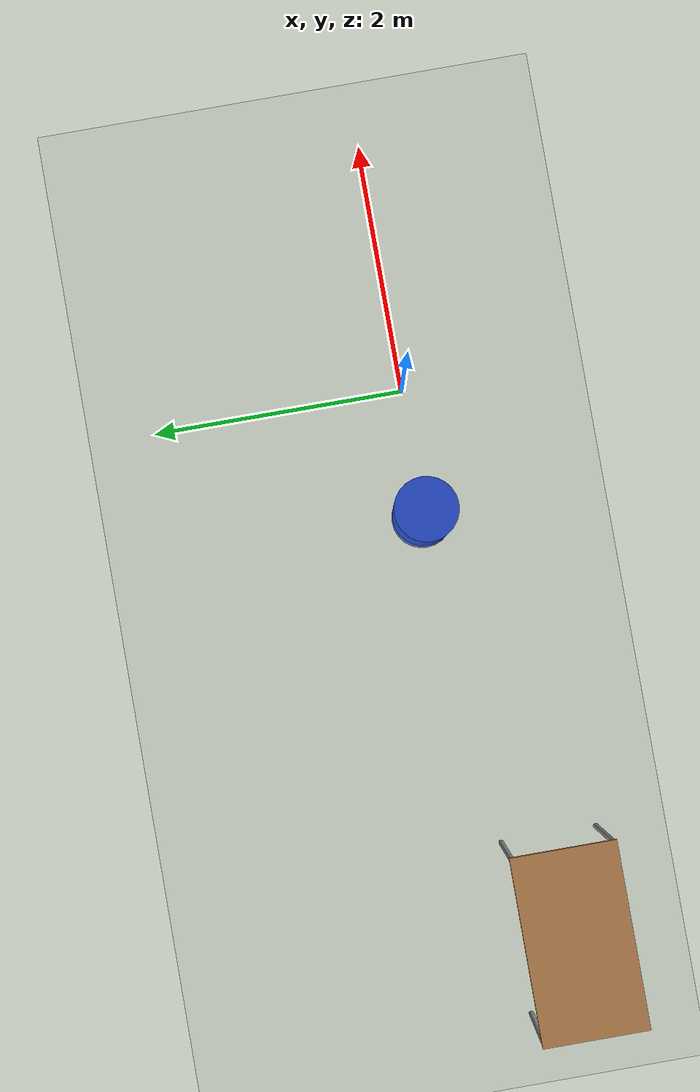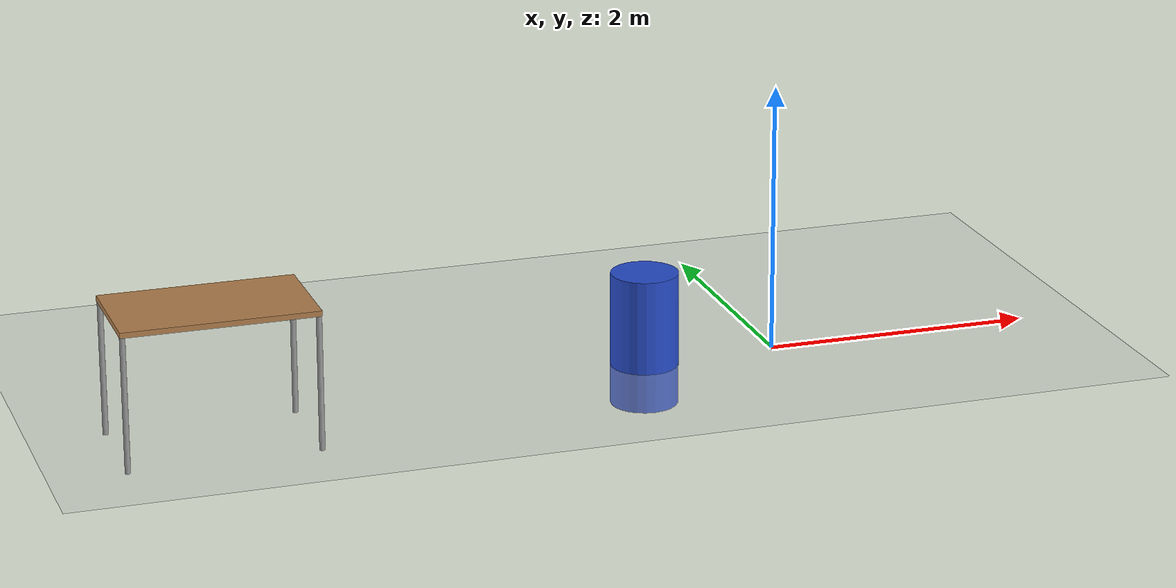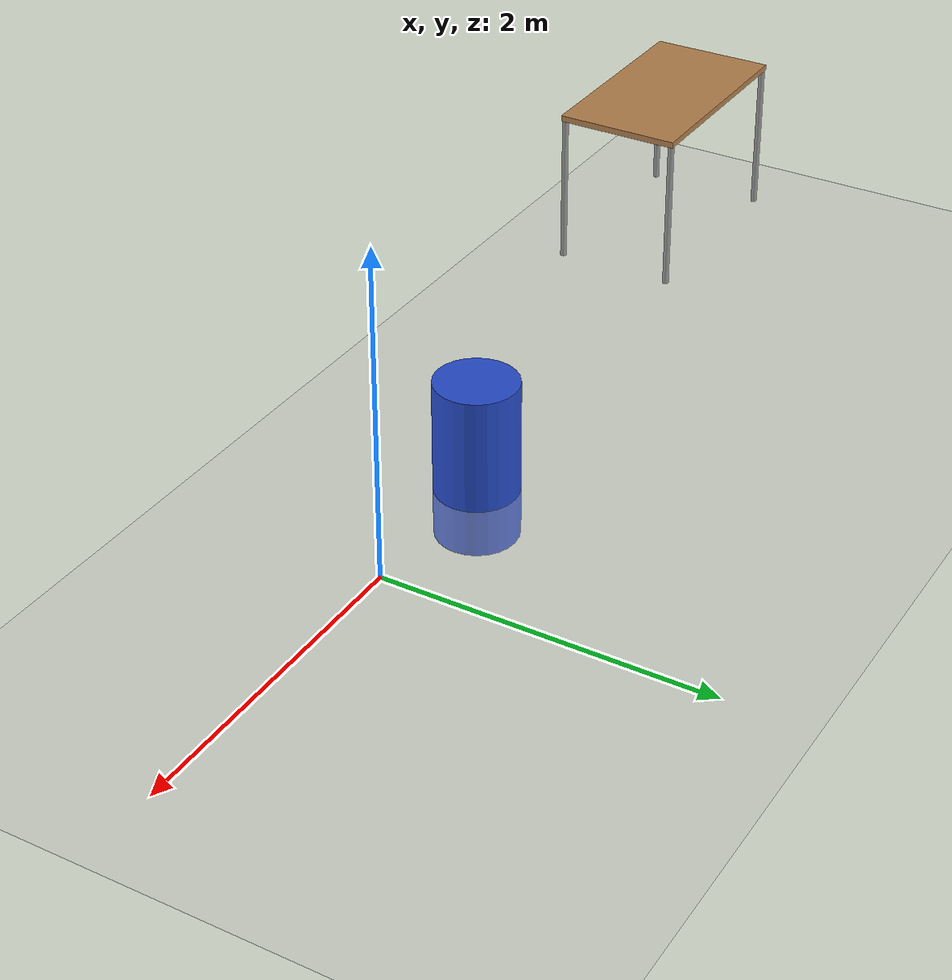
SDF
<sdf version="1.6">
 <world name="default">
  <model name="dynamic_obstacle_path_2">
   <pose>-1 0 0.2 0 0 0</pose>
   <link name="link">
    <inertial>
     <mass>70.0</mass>
     <inertia><ixx>8.4</ixx><ixy>0</ixy><ixz>0</ixz><iyy>8.4</iyy><iyz>0</iyz><izz>1.75</izz></inertia>
    </inertial>
    <collision name="collision">
     <geometry><cylinder><radius>0.25</radius><length>1.0</length></cylinder></geometry>
    </collision>
    <visual name="visual">
     <geometry><cylinder><radius>0.25</radius><length>1.0</length></cylinder></geometry>
     <material>
      <script><uri>file://media/materials/scripts/gazebo.material</uri><name>Gazebo/Blue</name></script>
     </material>
    </visual>
    <kinematic>1</kinematic>
    <gravity>0</gravity>
   </link>
   <plugin name="obstacle_path_2" filename="/home/he/quad/navigation/DRL-robot-navigation/catkin_ws/src/multi_robot_scenario/plugins/libobstaclePathPlugin.so">
    <velocity>0.5</velocity>
    <orientation>true</orientation>
    <angular_velocity>0.2</angular_velocity>
    <loop>true</loop>
    <path>
     <waypoint>-1 0 0.2</waypoint>
     <waypoint>-2 -0.5 0.2</waypoint>
     <waypoint>-1.5 -1 0.2</waypoint>
     <waypoint>0 -2 0.2</waypoint>
     <waypoint>1 -2 0.2</waypoint>
     <waypoint>2 -1 0.2</waypoint>
     <waypoint>1 -1 0.2</waypoint>
     <waypoint>-1 0 0.2</waypoint>
    </path>
   </plugin>
   <static>0</static>
  </model>
  <model name="ground_plane">
   <static>1</static>
   <link name="link">
    <collision name="collision">
     <geometry><plane><normal>0 0 1</normal><size>100 100</size></plane></geometry>
     <surface><friction><ode><mu>100</mu><mu2>50</mu2></ode></friction></surface>
    </collision>
    <visual name="visual">
     <cast_shadows>0</cast_shadows>
     <geometry><plane><normal>0 0 1</normal><size>100 100</size></plane></geometry>
     <material>
      <script><uri>file://media/materials/scripts/gazebo.material</uri><name>Gazebo/Grey</name></script>
     </material>
    </visual>
   </link>
  </model>
  <model name="table">
   <static>0</static>
   <link name="link">
    <collision name="surface">
     <pose>0 0 1 0 -0 0</pose>
     <geometry><box><size>1.5 0.8 0.03</size></box></geometry>
     <surface><friction><ode><mu>0.6</mu><mu2>0.6</mu2></ode></friction></surface>
    </collision>
    <visual name="visual1">
     <pose>0 0 1 0 -0 0</pose>
     <geometry><box><size>1.4 0.8 0.04</size></box></geometry>
     <material>
      <script><uri>file://media/materials/scripts/gazebo.material</uri><name>Gazebo/Wood</name></script>
     </material>
    </visual>
    <collision name="front_left_leg">
     <pose>0.68 0.38 0.5 0 -0 0</pose>
     <geometry><cylinder><radius>0.02</radius><length>1</length></cylinder></geometry>
    </collision>
    <visual name="front_left_leg">
     <pose>0.68 0.38 0.5 0 -0 0</pose>
     <geometry><cylinder><radius>0.02</radius><length>1</length></cylinder></geometry>
     <material>
      <script><uri>file://media/materials/scripts/gazebo.material</uri><name>Gazebo/Grey</name></script>
     </material>
    </visual>
    <collision name="front_right_leg">
     <pose>0.68 -0.38 0.5 0 -0 0</pose>
     <geometry><cylinder><radius>0.02</radius><length>1</length></cylinder></geometry>
    </collision>
    <visual name="front_right_leg">
     <pose>0.68 -0.38 0.5 0 -0 0</pose>
     <geometry><cylinder><radius>0.02</radius><length>1</length></cylinder></geometry>
     <material>
      <script><uri>file://media/materials/scripts/gazebo.material</uri><name>Gazebo/Grey</name></script>
     </material>
    </visual>
    <collision name="back_right_leg">
     <pose>-0.68 -0.38 0.5 0 -0 0</pose>
     <geometry><cylinder><radius>0.02</radius><length>1</length></cylinder></geometry>
    </collision>
    <visual name="back_right_leg">
     <pose>-0.68 -0.38 0.5 0 -0 0</pose>
     <geometry><cylinder><radius>0.02</radius><length>1</length></cylinder></geometry>
     <material>
      <script><uri>file://media/materials/scripts/gazebo.material</uri><name>Gazebo/Grey</name></script>
     </material>
    </visual>
    <collision name="back_left_leg">
     <pose>-0.68 0.38 0.5 0 -0 0</pose>
     <geometry><cylinder><radius>0.02</radius><length>1</length></cylinder></geometry>
    </collision>
    <visual name="back_left_leg">
     <pose>-0.68 0.38 0.5 0 -0 0</pose>
     <geometry><cylinder><radius>0.02</radius><length>1</length></cylinder></geometry>
     <material>
      <script><uri>file://media/materials/scripts/gazebo.material</uri><name>Gazebo/Grey</name></script>
     </material>
    </visual>
    <inertial>
     <inertia><ixx>1</ixx><ixy>0</ixy><ixz>0</ixz><iyy>1</iyy><iyz>0</iyz><izz>1</izz></inertia>
     <mass>1</mass>
    </inertial>
   </link>
   <pose>-4.34248 -0.532954 -9e-06 1e-06 -1e-06 0</pose>
  </model>
 </world>
</sdf>
